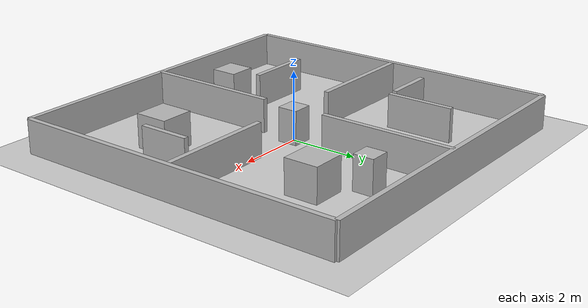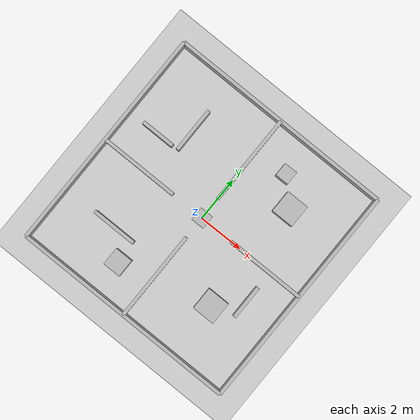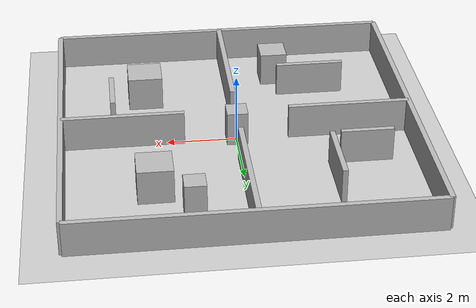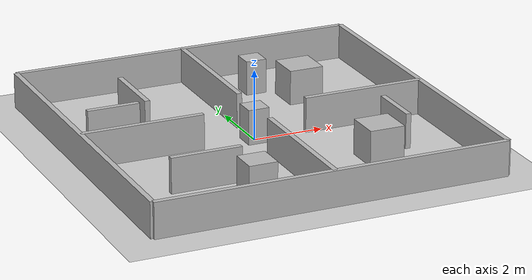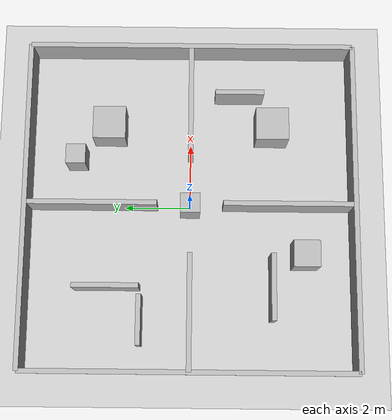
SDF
<?xml version="1.0"?>
<sdf version="1.8">
  <world name="default">
    <physics type="ode">
      <real_time_update_rate>1000.0</real_time_update_rate>
      <max_step_size>0.01</max_step_size>
      <real_time_factor>10.0</real_time_factor>
      <ode>
        <solver>
          <type>quick</type>
          <iters>150</iters>
          <precon_iters>0</precon_iters>
          <sor>1.400000</sor>
          <use_dynamic_moi_rescaling>1</use_dynamic_moi_rescaling>
        </solver>
        <constraints>
          <cfm>0.00001</cfm>
          <erp>0.2</erp>
          <contact_max_correcting_vel>2000.000000</contact_max_correcting_vel>
          <contact_surface_layer>0.01000</contact_surface_layer>
        </constraints>
      </ode>
    </physics>
    <plugin
      filename="gz-sim-physics-system"
      name="gz::sim::systems::Physics">
    </plugin>
    <plugin
      filename="gz-sim-user-commands-system"
      name="gz::sim::systems::UserCommands">
    </plugin>
    <plugin
      filename="gz-sim-scene-broadcaster-system"
      name="gz::sim::systems::SceneBroadcaster">
    </plugin>
    <plugin
      filename="gz-sim-sensors-system"
      name="gz::sim::systems::Sensors">
      <render_engine>ogre2</render_engine>
    </plugin>
    <plugin
      filename="gz-sim-imu-system"
      name="gz::sim::systems::Imu">
    </plugin>

    <include>
      <uri>https://fuel.gazebosim.org/1.0/OpenRobotics/models/Ground Plane</uri>
    </include>

    <include>
      <uri>https://fuel.gazebosim.org/1.0/OpenRobotics/models/Sun</uri>
    </include>

    <model name="outer_north">
      <static>true</static>
      <pose>0.0 5.0 0.5 0 0 0</pose>
      <link name="link">
        <collision name="collision">
          <geometry>
            <box>
              <size>10.0 0.15 1.0</size>
            </box>
          </geometry>
        </collision>
        <visual name="visual">
          <geometry>
            <box>
              <size>10.0 0.15 1.0</size>
            </box>
          </geometry>
        </visual>
      </link>
    </model>

    <model name="outer_south">
      <static>true</static>
      <pose>0.0 -5.0 0.5 0 0 0</pose>
      <link name="link">
        <collision name="collision">
          <geometry>
            <box>
              <size>10.0 0.15 1.0</size>
            </box>
          </geometry>
        </collision>
        <visual name="visual">
          <geometry>
            <box>
              <size>10.0 0.15 1.0</size>
            </box>
          </geometry>
        </visual>
      </link>
    </model>

    <model name="outer_west">
      <static>true</static>
      <pose>-5.0 0.0 0.5 0 0 0</pose>
      <link name="link">
        <collision name="collision">
          <geometry>
            <box>
              <size>0.15 10.0 1.0</size>
            </box>
          </geometry>
        </collision>
        <visual name="visual">
          <geometry>
            <box>
              <size>0.15 10.0 1.0</size>
            </box>
          </geometry>
        </visual>
      </link>
    </model>

    <model name="outer_east">
      <static>true</static>
      <pose>5.0 0.0 0.5 0 0 0</pose>
      <link name="link">
        <collision name="collision">
          <geometry>
            <box>
              <size>0.15 10.0 1.0</size>
            </box>
          </geometry>
        </collision>
        <visual name="visual">
          <geometry>
            <box>
              <size>0.15 10.0 1.0</size>
            </box>
          </geometry>
        </visual>
      </link>
    </model>

    <model name="inner_vertical_south">
      <static>true</static>
      <pose>0.0 -3.0 0.5 0 0 0</pose>
      <link name="link">
        <collision name="collision">
          <geometry>
            <box>
              <size>0.15 4.0 1.0</size>
            </box>
          </geometry>
        </collision>
        <visual name="visual">
          <geometry>
            <box>
              <size>0.15 4.0 1.0</size>
            </box>
          </geometry>
        </visual>
      </link>
    </model>

    <model name="inner_vertical_north">
      <static>true</static>
      <pose>0.0 3.0 0.5 0 0 0</pose>
      <link name="link">
        <collision name="collision">
          <geometry>
            <box>
              <size>0.15 4.0 1.0</size>
            </box>
          </geometry>
        </collision>
        <visual name="visual">
          <geometry>
            <box>
              <size>0.15 4.0 1.0</size>
            </box>
          </geometry>
        </visual>
      </link>
    </model>

    <model name="inner_horizontal_east">
      <static>true</static>
      <pose>3.25 0.0 0.5 0 0 0</pose>
      <link name="link">
        <collision name="collision">
          <geometry>
            <box>
              <size>3.5 0.15 1.0</size>
            </box>
          </geometry>
        </collision>
        <visual name="visual">
          <geometry>
            <box>
              <size>3.5 0.15 1.0</size>
            </box>
          </geometry>
        </visual>
      </link>
    </model>

    <model name="inner_horizontal_west">
      <static>true</static>
      <pose>-3.25 0.0 0.5 0 0 0</pose>
      <link name="link">
        <collision name="collision">
          <geometry>
            <box>
              <size>3.5 0.15 1.0</size>
            </box>
          </geometry>
        </collision>
        <visual name="visual">
          <geometry>
            <box>
              <size>3.5 0.15 1.0</size>
            </box>
          </geometry>
        </visual>
      </link>
    </model>

    <model name="obs_q1_pillar">
      <static>true</static>
      <pose>2.5 2.5 0.5 0 0 0</pose>
      <link name="link">
        <collision name="collision">
          <geometry>
            <box>
              <size>1.0 1.0 1.0</size>
            </box>
          </geometry>
        </collision>
        <visual name="visual">
          <geometry>
            <box>
              <size>1.0 1.0 1.0</size>
            </box>
          </geometry>
        </visual>
      </link>
    </model>

    <model name="obs_q2_wall">
      <static>true</static>
      <pose>-2.5 2.5 0.5 0 0 0</pose>
      <link name="link">
        <collision name="collision">
          <geometry>
            <box>
              <size>0.15 2.0 1.0</size>
            </box>
          </geometry>
        </collision>
        <visual name="visual">
          <geometry>
            <box>
              <size>0.15 2.0 1.0</size>
            </box>
          </geometry>
        </visual>
      </link>
    </model>

    <model name="obs_q3_wall">
      <static>true</static>
      <pose>-2.5 -2.5 0.5 0 0 0</pose>
      <link name="link">
        <collision name="collision">
          <geometry>
            <box>
              <size>2.0 0.15 1.0</size>
            </box>
          </geometry>
        </collision>
        <visual name="visual">
          <geometry>
            <box>
              <size>2.0 0.15 1.0</size>
            </box>
          </geometry>
        </visual>
      </link>
    </model>

    <model name="obs_q4_pillar">
      <static>true</static>
      <pose>2.5 -2.5 0.5 0 0 0</pose>
      <link name="link">
        <collision name="collision">
          <geometry>
            <box>
              <size>1.0 1.0 1.0</size>
            </box>
          </geometry>
        </collision>
        <visual name="visual">
          <geometry>
            <box>
              <size>1.0 1.0 1.0</size>
            </box>
          </geometry>
        </visual>
      </link>
    </model>

    <model name="obs_q1_small_pillar">
      <static>true</static>
      <pose>1.5 3.5 0.5 0 0 0</pose>
      <link name="link">
        <collision name="collision">
          <geometry>
            <box>
              <size>0.6 0.6 1.0</size>
            </box>
          </geometry>
        </collision>
        <visual name="visual">
          <geometry>
            <box>
              <size>0.6 0.6 1.0</size>
            </box>
          </geometry>
        </visual>
      </link>
    </model>

    <model name="obs_q2_small_wall">
      <static>true</static>
      <pose>-3.5 1.5 0.5 0 0 0</pose>
      <link name="link">
        <collision name="collision">
          <geometry>
            <box>
              <size>1.5 0.15 1.0</size>
            </box>
          </geometry>
        </collision>
        <visual name="visual">
          <geometry>
            <box>
              <size>1.5 0.15 1.0</size>
            </box>
          </geometry>
        </visual>
      </link>
    </model>

    <model name="obs_q3_small_box">
      <static>true</static>
      <pose>-1.5 -3.5 0.5 0 0 0</pose>
      <link name="link">
        <collision name="collision">
          <geometry>
            <box>
              <size>0.8 0.8 1.0</size>
            </box>
          </geometry>
        </collision>
        <visual name="visual">
          <geometry>
            <box>
              <size>0.8 0.8 1.0</size>
            </box>
          </geometry>
        </visual>
      </link>
    </model>

    <model name="obs_q4_small_wall">
      <static>true</static>
      <pose>3.5 -1.5 0.5 0 0 0</pose>
      <link name="link">
        <collision name="collision">
          <geometry>
            <box>
              <size>0.15 1.5 1.0</size>
            </box>
          </geometry>
        </collision>
        <visual name="visual">
          <geometry>
            <box>
              <size>0.15 1.5 1.0</size>
            </box>
          </geometry>
        </visual>
      </link>
    </model>

    <model name="obs_center_block">
      <static>true</static>
      <pose>0.0 0.0 0.5 0 0 0</pose>
      <link name="link">
        <collision name="collision">
          <geometry>
            <box>
              <size>0.6 0.6 1.0</size>
            </box>
          </geometry>
        </collision>
        <visual name="visual">
          <geometry>
            <box>
              <size>0.6 0.6 1.0</size>
            </box>
          </geometry>
        </visual>
      </link>
    </model>

</world>
</sdf>
